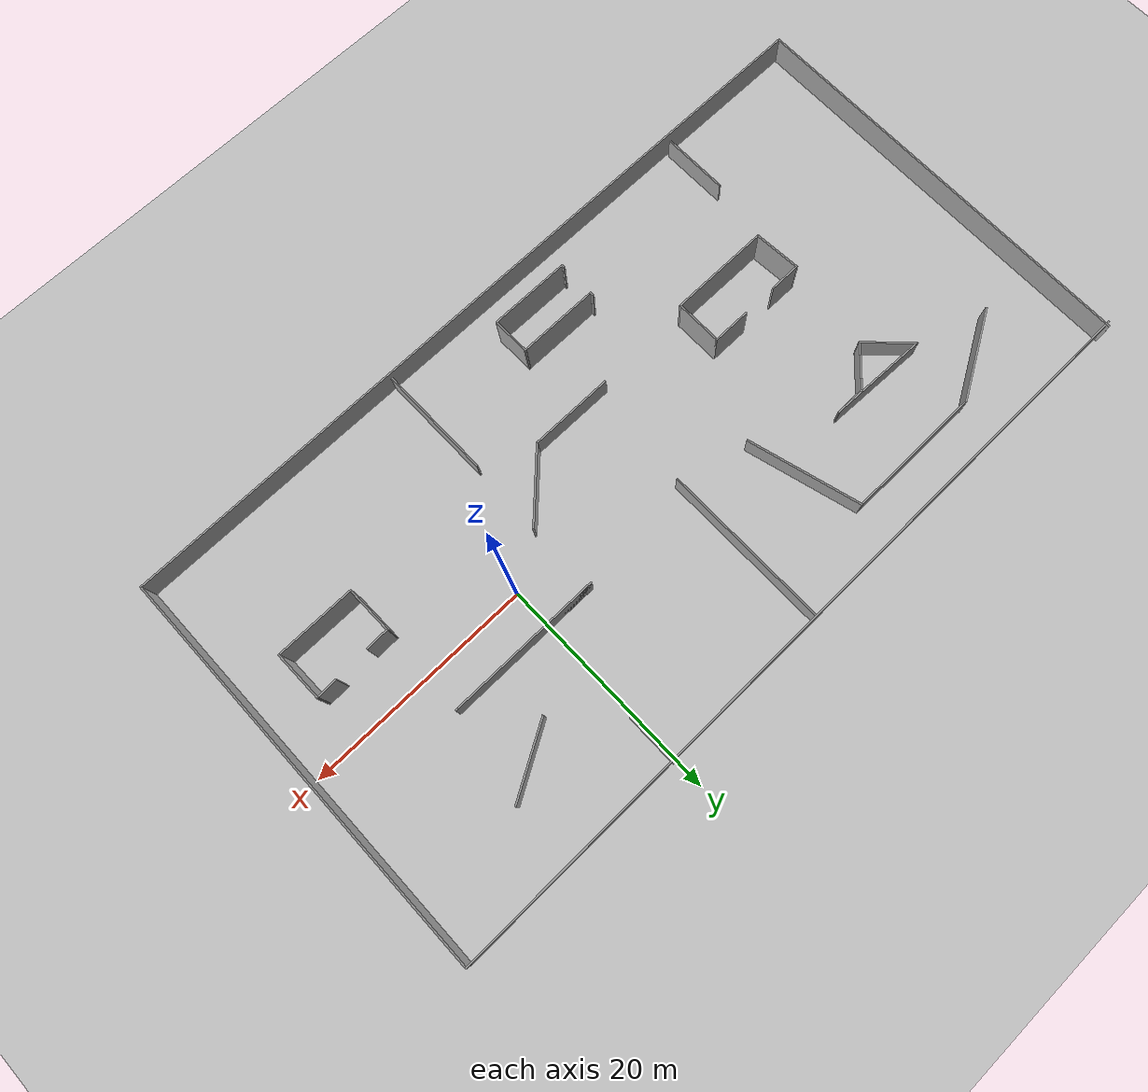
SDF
<sdf version="1.7">
 <world name="default">
  <light name="sun" type="directional">
   <pose>0 0 10 0 -0 0</pose>
   <diffuse>0.8 0.8 0.8 1</diffuse>
   <specular>0.2 0.2 0.2 1</specular>
   <attenuation>
    <range>1000</range>
    <constant>0.9</constant>
    <linear>0.01</linear>
    <quadratic>0.001</quadratic>
   </attenuation>
   <direction>-0.5 0.1 -0.9</direction>
   <spot><inner_angle>0</inner_angle><outer_angle>0</outer_angle><falloff>0</falloff></spot>
  </light>
  <model name="ground_plane">
   <static>1</static>
   <link name="link">
    <collision name="collision">
     <geometry><plane><normal>0 0 1</normal><size>100 100</size></plane></geometry>
     <surface>
      <contact><collide_bitmask>65535</collide_bitmask></contact>
      <friction><ode><mu>100</mu><mu2>50</mu2></ode></friction>
     </surface>
    </collision>
    <visual name="visual">
     <cast_shadows>0</cast_shadows>
     <geometry><plane><normal>0 0 1</normal><size>100 100</size></plane></geometry>
     <material>
      <script><uri>file://media/materials/scripts/gazebo.material</uri><name>Gazebo/Grey</name></script>
     </material>
    </visual>
   </link>
  </model>
  <gravity>0 0 -9.8</gravity>
  <magnetic_field>6e-06 2.3e-05 -4.2e-05</magnetic_field>
  <atmosphere type="adiabatic"/>
  <physics type="ode">
   <max_step_size>0.001</max_step_size>
   <real_time_factor>1</real_time_factor>
   <real_time_update_rate>1000</real_time_update_rate>
  </physics>
  <scene><ambient>0.4 0.4 0.4 1</ambient><background>0.7 0.7 0.7 1</background><shadows>1</shadows></scene>
  <spherical_coordinates>
   <surface_model>EARTH_WGS84</surface_model>
   <latitude_deg>0</latitude_deg>
   <longitude_deg>0</longitude_deg>
   <elevation>0</elevation>
   <heading_deg>0</heading_deg>
  </spherical_coordinates>
  <model name="forkwork.world">
   <pose>-14.2792 -0.985001 0 0 -0 0</pose>
   <link name="Wall_0">
    <collision name="Wall_0_Collision">
     <geometry><box><size>37.2514 0.15 3</size></box></geometry>
     <pose>0 0 1.5 0 -0 0</pose>
    </collision>
    <visual name="Wall_0_Visual">
     <pose>0 0 1.5 0 -0 0</pose>
     <geometry><box><size>37.2514 0.15 3</size></box></geometry>
     <material>
      <script><uri>file://media/materials/scripts/gazebo.material</uri><name>Gazebo/Grey</name></script>
      <ambient>1 1 1 1</ambient>
     </material>
     <meta><layer>0</layer></meta>
    </visual>
    <pose>-34.4248 1e-06 0 0 -0 -1.57947</pose>
   </link>
   <link name="Wall_1">
    <collision name="Wall_1_Collision">
     <geometry><box><size>69.1611 0.15 3</size></box></geometry>
     <pose>0 0 1.5 0 -0 0</pose>
    </collision>
    <visual name="Wall_1_Visual">
     <pose>0 0 1.5 0 -0 0</pose>
     <geometry><box><size>69.1611 0.15 3</size></box></geometry>
     <material>
      <script><uri>file://media/materials/scripts/gazebo.material</uri><name>Gazebo/Grey</name></script>
      <ambient>1 1 1 1</ambient>
     </material>
     <meta><layer>0</layer></meta>
    </visual>
    <pose>-0.080338 -18.55 0 0 -0 0</pose>
   </link>
   <link name="Wall_10">
    <collision name="Wall_10_Collision">
     <geometry><box><size>6 0.15 2.5</size></box></geometry>
     <pose>0 0 1.25 0 -0 0</pose>
    </collision>
    <visual name="Wall_10_Visual">
     <pose>0 0 1.25 0 -0 0</pose>
     <geometry><box><size>6 0.15 2.5</size></box></geometry>
     <material>
      <script><uri>file://media/materials/scripts/gazebo.material</uri><name>Gazebo/Grey</name></script>
      <ambient>1 1 1 1</ambient>
     </material>
     <meta><layer>0</layer></meta>
    </visual>
    <pose>-21.0697 -15.2699 0 0 -0 -1.5708</pose>
   </link>
   <link name="Wall_12">
    <collision name="Wall_12_Collision">
     <geometry><box><size>10.25 0.15 2.5</size></box></geometry>
     <pose>0 0 1.25 0 -0 0</pose>
    </collision>
    <visual name="Wall_12_Visual">
     <pose>0 0 1.25 0 -0 0</pose>
     <geometry><box><size>10.25 0.15 2.5</size></box></geometry>
     <material>
      <script><uri>file://media/materials/scripts/gazebo.material</uri><name>Gazebo/Grey</name></script>
      <ambient>1 1 1 1</ambient>
     </material>
     <meta><layer>0</layer></meta>
    </visual>
    <pose>9.87941 -13.292 0 0 -0 -1.5708</pose>
   </link>
   <link name="Wall_14">
    <collision name="Wall_14_Collision">
     <geometry><box><size>13.5 0.15 2.5</size></box></geometry>
     <pose>0 0 1.25 0 -0 0</pose>
    </collision>
    <visual name="Wall_14_Visual">
     <pose>0 0 1.25 0 -0 0</pose>
     <geometry><box><size>13.5 0.15 2.5</size></box></geometry>
     <material>
      <script><uri>file://media/materials/scripts/gazebo.material</uri><name>Gazebo/Grey</name></script>
      <ambient>1 1 1 1</ambient>
     </material>
     <meta><layer>0</layer></meta>
    </visual>
    <pose>16.5544 4.66556 0 0 -0 0</pose>
   </link>
   <link name="Wall_16">
    <collision name="Wall_16_Collision">
     <geometry><box><size>15 0.15 2.5</size></box></geometry>
     <pose>0 0 1.25 0 -0 0</pose>
    </collision>
    <visual name="Wall_16_Visual">
     <pose>0 0 1.25 0 -0 0</pose>
     <geometry><box><size>15 0.15 2.5</size></box></geometry>
     <material>
      <script><uri>file://media/materials/scripts/gazebo.material</uri><name>Gazebo/Grey</name></script>
      <ambient>1 1 1 1</ambient>
     </material>
     <meta><layer>0</layer></meta>
    </visual>
    <pose>-0.544267 10.8715 0 0 -0 -1.5708</pose>
   </link>
   <link name="Wall_18">
    <collision name="Wall_18_Collision">
     <geometry><box><size>4.75 0.15 2.5</size></box></geometry>
     <pose>0 0 1.25 0 -0 0</pose>
    </collision>
    <visual name="Wall_18_Visual">
     <pose>0 0 1.25 0 -0 0</pose>
     <geometry><box><size>4.75 0.15 2.5</size></box></geometry>
     <material>
      <script><uri>file://media/materials/scripts/gazebo.material</uri><name>Gazebo/Grey</name></script>
      <ambient>1 1 1 1</ambient>
     </material>
     <meta><layer>0</layer></meta>
    </visual>
    <pose>14.5671 16.1364 0 0 -0 -1.5708</pose>
   </link>
   <link name="Wall_2">
    <collision name="Wall_2_Collision">
     <geometry><box><size>37.0004 0.15 3</size></box></geometry>
     <pose>0 0 1.5 0 -0 0</pose>
    </collision>
    <visual name="Wall_2_Visual">
     <pose>0 0 1.5 0 -0 0</pose>
     <geometry><box><size>37.0004 0.15 3</size></box></geometry>
     <material>
      <script><uri>file://media/materials/scripts/gazebo.material</uri><name>Gazebo/Grey</name></script>
      <ambient>1 1 1 1</ambient>
     </material>
     <meta><layer>0</layer></meta>
    </visual>
    <pose>34.5057 -0.124999 0 0 -0 1.56643</pose>
   </link>
   <link name="Wall_20">
    <collision name="Wall_20_Collision">
     <geometry><box><size>13.75 0.15 2.5</size></box></geometry>
     <pose>0 0 1.25 0 -0 0</pose>
    </collision>
    <visual name="Wall_20_Visual">
     <pose>0 0 1.25 0 -0 0</pose>
     <geometry><box><size>13.75 0.15 2.5</size></box></geometry>
     <material>
      <script><uri>file://media/materials/scripts/gazebo.material</uri><name>Gazebo/Grey</name></script>
      <ambient>1 1 1 1</ambient>
     </material>
     <meta><layer>0</layer></meta>
    </visual>
    <pose>16.6794 4.66556 0 0 -0 0</pose>
   </link>
   <link name="Wall_27">
    <pose>-6.14084 -13.726 0 0 -0 -1.5708</pose>
    <visual name="Wall_27_Visual_0">
     <pose>-1.67802 0 2 0 -0 0</pose>
     <geometry><box><size>0.393966 0.15 4</size></box></geometry>
     <material>
      <script><uri>file://media/materials/scripts/gazebo.material</uri><name>Gazebo/Grey</name></script>
      <ambient>1 1 1 1</ambient>
     </material>
     <meta><layer>0</layer></meta>
    </visual>
    <collision name="Wall_27_Collision_0">
     <geometry><box><size>0.393966 0.15 4</size></box></geometry>
     <pose>-1.67802 0 2 0 -0 0</pose>
    </collision>
    <visual name="Wall_27_Visual_1">
     <pose>1.69698 0 2 0 -0 0</pose>
     <geometry><box><size>0.356034 0.15 4</size></box></geometry>
     <material>
      <script><uri>file://media/materials/scripts/gazebo.material</uri><name>Gazebo/Grey</name></script>
      <ambient>1 1 1 1</ambient>
     </material>
     <meta><layer>0</layer></meta>
    </visual>
    <collision name="Wall_27_Collision_1">
     <geometry><box><size>0.356034 0.15 4</size></box></geometry>
     <pose>1.69698 0 2 0 -0 0</pose>
    </collision>
   </link>
   <link name="Wall_28">
    <collision name="Wall_28_Collision">
     <geometry><box><size>7.25 0.15 4</size></box></geometry>
     <pose>0 0 2 0 -0 0</pose>
    </collision>
    <visual name="Wall_28_Visual">
     <pose>0 0 2 0 -0 0</pose>
     <geometry><box><size>7.25 0.15 4</size></box></geometry>
     <material>
      <script><uri>file://media/materials/scripts/gazebo.material</uri><name>Gazebo/Grey</name></script>
      <ambient>1 1 1 1</ambient>
     </material>
     <meta><layer>0</layer></meta>
    </visual>
    <pose>-2.59084 -15.526 0 0 -0 0</pose>
   </link>
   <link name="Wall_29">
    <collision name="Wall_29_Collision">
     <geometry><box><size>3.5 0.15 4</size></box></geometry>
     <pose>0 0 2 0 -0 0</pose>
    </collision>
    <visual name="Wall_29_Visual">
     <pose>0 0 2 0 -0 0</pose>
     <geometry><box><size>3.5 0.15 4</size></box></geometry>
     <material>
      <script><uri>file://media/materials/scripts/gazebo.material</uri><name>Gazebo/Grey</name></script>
      <ambient>1 1 1 1</ambient>
     </material>
     <meta><layer>0</layer></meta>
    </visual>
    <pose>0.959162 -13.851 0 0 -0 1.5708</pose>
   </link>
   <link name="Wall_3">
    <collision name="Wall_3_Collision">
     <geometry><box><size>69.25 0.15 3</size></box></geometry>
     <pose>0 0 1.5 0 -0 0</pose>
    </collision>
    <visual name="Wall_3_Visual">
     <pose>0 0 1.5 0 -0 0</pose>
     <geometry><box><size>69.25 0.15 3</size></box></geometry>
     <material>
      <script><uri>file://media/materials/scripts/gazebo.material</uri><name>Gazebo/Grey</name></script>
      <ambient>1 1 1 1</ambient>
     </material>
     <meta><layer>0</layer></meta>
    </visual>
    <pose>0.036161 18.3 0 0 -0 3.14159</pose>
   </link>
   <link name="Wall_30">
    <collision name="Wall_30_Collision">
     <geometry><box><size>7.25 0.15 4</size></box></geometry>
     <pose>0 0 2 0 -0 0</pose>
    </collision>
    <visual name="Wall_30_Visual">
     <pose>0 0 2 0 -0 0</pose>
     <geometry><box><size>7.25 0.15 4</size></box></geometry>
     <material>
      <script><uri>file://media/materials/scripts/gazebo.material</uri><name>Gazebo/Grey</name></script>
      <ambient>1 1 1 1</ambient>
     </material>
     <meta><layer>0</layer></meta>
    </visual>
    <pose>-2.59084 -12.176 0 0 -0 3.14159</pose>
   </link>
   <link name="Wall_32">
    <collision name="Wall_32_Collision">
     <geometry><box><size>4.25 0.15 4</size></box></geometry>
     <pose>0 0 2 0 -0 0</pose>
    </collision>
    <visual name="Wall_32_Visual">
     <pose>0 0 2 0 -0 0</pose>
     <geometry><box><size>4.25 0.15 4</size></box></geometry>
     <material>
      <script><uri>file://media/materials/scripts/gazebo.material</uri><name>Gazebo/Grey</name></script>
      <ambient>1 1 1 1</ambient>
     </material>
     <meta><layer>0</layer></meta>
    </visual>
    <pose>23.2197 -5.021 0 0 -0 -1.55982</pose>
   </link>
   <link name="Wall_33">
    <collision name="Wall_33_Collision">
     <geometry><box><size>7 0.15 4</size></box></geometry>
     <pose>0 0 2 0 -0 0</pose>
    </collision>
    <visual name="Wall_33_Visual">
     <pose>0 0 2 0 -0 0</pose>
     <geometry><box><size>7 0.15 4</size></box></geometry>
     <material>
      <script><uri>file://media/materials/scripts/gazebo.material</uri><name>Gazebo/Grey</name></script>
      <ambient>1 1 1 1</ambient>
     </material>
     <meta><layer>0</layer></meta>
    </visual>
    <pose>26.6672 -7.071 0 0 -0 0</pose>
   </link>
   <link name="Wall_34">
    <collision name="Wall_34_Collision">
     <geometry><box><size>4.5 0.15 4</size></box></geometry>
     <pose>0 0 2 0 -0 0</pose>
    </collision>
    <visual name="Wall_34_Visual">
     <pose>0 0 2 0 -0 0</pose>
     <geometry><box><size>4.5 0.15 4</size></box></geometry>
     <material>
      <script><uri>file://media/materials/scripts/gazebo.material</uri><name>Gazebo/Grey</name></script>
      <ambient>1 1 1 1</ambient>
     </material>
     <meta><layer>0</layer></meta>
    </visual>
    <pose>30.0697 -4.896 0 0 -0 1.58114</pose>
   </link>
   <link name="Wall_35">
    <pose>26.6222 -2.846 0 0 -0 -3.10511</pose>
    <visual name="Wall_35_Visual_0">
     <pose>-2.54266 0 2 0 -0 0</pose>
     <geometry><box><size>1.91925 0.15 4</size></box></geometry>
     <material>
      <script><uri>file://media/materials/scripts/gazebo.material</uri><name>Gazebo/Grey</name></script>
      <ambient>1 1 1 1</ambient>
     </material>
     <meta><layer>0</layer></meta>
    </visual>
    <collision name="Wall_35_Collision_0">
     <geometry><box><size>1.91925 0.15 4</size></box></geometry>
     <pose>-2.54266 0 2 0 -0 0</pose>
    </collision>
    <visual name="Wall_35_Visual_1">
     <pose>2.45962 0 2 0 -0 0</pose>
     <geometry><box><size>2.08531 0.15 4</size></box></geometry>
     <material>
      <script><uri>file://media/materials/scripts/gazebo.material</uri><name>Gazebo/Grey</name></script>
      <ambient>1 1 1 1</ambient>
     </material>
     <meta><layer>0</layer></meta>
    </visual>
    <collision name="Wall_35_Collision_1">
     <geometry><box><size>2.08531 0.15 4</size></box></geometry>
     <pose>2.45962 0 2 0 -0 0</pose>
    </collision>
   </link>
   <link name="Wall_37">
    <collision name="Wall_37_Collision">
     <geometry><box><size>8.5 0.15 2.5</size></box></geometry>
     <pose>0 0 1.25 0 -0 0</pose>
    </collision>
    <visual name="Wall_37_Visual">
     <pose>0 0 1.25 0 -0 0</pose>
     <geometry><box><size>8.5 0.15 2.5</size></box></geometry>
     <material>
      <script><uri>file://media/materials/scripts/gazebo.material</uri><name>Gazebo/Grey</name></script>
      <ambient>1 1 1 1</ambient>
     </material>
     <meta><layer>0</layer></meta>
    </visual>
    <pose>-25.0526 12.6884 0 0 -0 0.523599</pose>
   </link>
   <link name="Wall_38">
    <collision name="Wall_38_Collision">
     <geometry><box><size>12.25 0.15 2.5</size></box></geometry>
     <pose>0 0 1.25 0 -0 0</pose>
    </collision>
    <visual name="Wall_38_Visual">
     <pose>0 0 1.25 0 -0 0</pose>
     <geometry><box><size>12.25 0.15 2.5</size></box></geometry>
     <material>
      <script><uri>file://media/materials/scripts/gazebo.material</uri><name>Gazebo/Grey</name></script>
      <ambient>1 1 1 1</ambient>
     </material>
     <meta><layer>0</layer></meta>
    </visual>
    <pose>-15.387 14.7759 0 0 -0 0</pose>
   </link>
   <link name="Wall_39">
    <collision name="Wall_39_Collision">
     <geometry><box><size>10.25 0.15 2.5</size></box></geometry>
     <pose>0 0 1.25 0 -0 0</pose>
    </collision>
    <visual name="Wall_39_Visual">
     <pose>0 0 1.25 0 -0 0</pose>
     <geometry><box><size>10.25 0.15 2.5</size></box></geometry>
     <material>
      <script><uri>file://media/materials/scripts/gazebo.material</uri><name>Gazebo/Grey</name></script>
      <ambient>1 1 1 1</ambient>
     </material>
     <meta><layer>0</layer></meta>
    </visual>
    <pose>-8.02994 9.89796 0 0 -0 -1.309</pose>
   </link>
   <link name="Wall_41">
    <collision name="Wall_41_Collision">
     <geometry><box><size>7.5 0.15 2.5</size></box></geometry>
     <pose>0 0 1.25 0 -0 0</pose>
    </collision>
    <visual name="Wall_41_Visual">
     <pose>0 0 1.25 0 -0 0</pose>
     <geometry><box><size>7.5 0.15 2.5</size></box></geometry>
     <material>
      <script><uri>file://media/materials/scripts/gazebo.material</uri><name>Gazebo/Grey</name></script>
      <ambient>1 1 1 1</ambient>
     </material>
     <meta><layer>0</layer></meta>
    </visual>
    <pose>1.59161 -6.32949 0 0 -0 0</pose>
   </link>
   <link name="Wall_42">
    <collision name="Wall_42_Collision">
     <geometry><box><size>7 0.15 2.5</size></box></geometry>
     <pose>0 0 1.25 0 -0 0</pose>
    </collision>
    <visual name="Wall_42_Visual">
     <pose>0 0 1.25 0 -0 0</pose>
     <geometry><box><size>7 0.15 2.5</size></box></geometry>
     <material>
      <script><uri>file://media/materials/scripts/gazebo.material</uri><name>Gazebo/Grey</name></script>
      <ambient>1 1 1 1</ambient>
     </material>
     <meta><layer>0</layer></meta>
    </visual>
    <pose>7.68845 -3.90765 0 0 -0 0.785398</pose>
   </link>
   <link name="Wall_44">
    <collision name="Wall_44_Collision">
     <geometry><box><size>6.75 0.15 2.5</size></box></geometry>
     <pose>0 0 1.25 0 -0 0</pose>
    </collision>
    <visual name="Wall_44_Visual">
     <pose>0 0 1.25 0 -0 0</pose>
     <geometry><box><size>6.75 0.15 2.5</size></box></geometry>
     <material>
      <script><uri>file://media/materials/scripts/gazebo.material</uri><name>Gazebo/Grey</name></script>
      <ambient>1 1 1 1</ambient>
     </material>
     <meta><layer>0</layer></meta>
    </visual>
    <pose>22.0634 11.0497 0 0 -0 -2.61799</pose>
   </link>
   <link name="Wall_46">
    <pose>-15.0788 -2.284 0 0 -0 0</pose>
    <visual name="Wall_46_Visual_0">
     <pose>-3.20513 0 2 0 -0 0</pose>
     <geometry><box><size>2.83973 0.15 4</size></box></geometry>
     <material>
      <script><uri>file://media/materials/scripts/gazebo.material</uri><name>Gazebo/Grey</name></script>
      <ambient>1 1 1 1</ambient>
     </material>
     <meta><layer>0</layer></meta>
    </visual>
    <collision name="Wall_46_Collision_0">
     <geometry><box><size>2.83973 0.15 4</size></box></geometry>
     <pose>-3.20513 0 2 0 -0 0</pose>
    </collision>
    <visual name="Wall_46_Visual_1">
     <pose>2.91987 0 2 0 -0 0</pose>
     <geometry><box><size>3.41027 0.15 4</size></box></geometry>
     <material>
      <script><uri>file://media/materials/scripts/gazebo.material</uri><name>Gazebo/Grey</name></script>
      <ambient>1 1 1 1</ambient>
     </material>
     <meta><layer>0</layer></meta>
    </visual>
    <collision name="Wall_46_Collision_1">
     <geometry><box><size>3.41027 0.15 4</size></box></geometry>
     <pose>2.91987 0 2 0 -0 0</pose>
    </collision>
   </link>
   <link name="Wall_47">
    <collision name="Wall_47_Collision">
     <geometry><box><size>4.25 0.15 4</size></box></geometry>
     <pose>0 0 2 0 -0 0</pose>
    </collision>
    <visual name="Wall_47_Visual">
     <pose>0 0 2 0 -0 0</pose>
     <geometry><box><size>4.25 0.15 4</size></box></geometry>
     <material>
      <script><uri>file://media/materials/scripts/gazebo.material</uri><name>Gazebo/Grey</name></script>
      <ambient>1 1 1 1</ambient>
     </material>
     <meta><layer>0</layer></meta>
    </visual>
    <pose>-10.5288 -4.334 0 0 -0 -1.5708</pose>
   </link>
   <link name="Wall_48">
    <collision name="Wall_48_Collision">
     <geometry><box><size>9 0.15 4</size></box></geometry>
     <pose>0 0 2 0 -0 0</pose>
    </collision>
    <visual name="Wall_48_Visual">
     <pose>0 0 2 0 -0 0</pose>
     <geometry><box><size>9 0.15 4</size></box></geometry>
     <material>
      <script><uri>file://media/materials/scripts/gazebo.material</uri><name>Gazebo/Grey</name></script>
      <ambient>1 1 1 1</ambient>
     </material>
     <meta><layer>0</layer></meta>
    </visual>
    <pose>-14.9538 -6.384 0 0 -0 3.14159</pose>
   </link>
   <link name="Wall_49">
    <collision name="Wall_49_Collision">
     <geometry><box><size>4.25762 0.15 4</size></box></geometry>
     <pose>0 0 2 0 -0 0</pose>
    </collision>
    <visual name="Wall_49_Visual">
     <pose>0 0 2 0 -0 0</pose>
     <geometry><box><size>4.25762 0.15 4</size></box></geometry>
     <material>
      <script><uri>file://media/materials/scripts/gazebo.material</uri><name>Gazebo/Grey</name></script>
      <ambient>1 1 1 1</ambient>
     </material>
     <meta><layer>0</layer></meta>
    </visual>
    <pose>-19.5038 -4.334 0 0 -0 1.6317</pose>
   </link>
   <link name="Wall_5">
    <collision name="Wall_5_Collision">
     <geometry><box><size>4.75 0.15 2.5</size></box></geometry>
     <pose>0 0 1.25 0 -0 0</pose>
    </collision>
    <visual name="Wall_5_Visual">
     <pose>0 0 1.25 0 -0 0</pose>
     <geometry><box><size>4.75 0.15 2.5</size></box></geometry>
     <material>
      <script><uri>file://media/materials/scripts/gazebo.material</uri><name>Gazebo/Grey</name></script>
      <ambient>1 1 1 1</ambient>
     </material>
     <meta><layer>0</layer></meta>
    </visual>
    <pose>-20.7306 7.10775 0 0 -0 -0.785398</pose>
   </link>
   <link name="Wall_6">
    <collision name="Wall_6_Collision">
     <geometry><box><size>4.25 0.15 2.5</size></box></geometry>
     <pose>0 0 1.25 0 -0 0</pose>
    </collision>
    <visual name="Wall_6_Visual">
     <pose>0 0 1.25 0 -0 0</pose>
     <geometry><box><size>4.25 0.15 2.5</size></box></geometry>
     <material>
      <script><uri>file://media/materials/scripts/gazebo.material</uri><name>Gazebo/Grey</name></script>
      <ambient>1 1 1 1</ambient>
     </material>
     <meta><layer>0</layer></meta>
    </visual>
    <pose>-17.6547 6.93097 0 0 -0 0.785398</pose>
   </link>
   <link name="Wall_7">
    <collision name="Wall_7_Collision">
     <geometry><box><size>2.75 0.15 2.5</size></box></geometry>
     <pose>0 0 1.25 0 -0 0</pose>
    </collision>
    <visual name="Wall_7_Visual">
     <pose>0 0 1.25 0 -0 0</pose>
     <geometry><box><size>2.75 0.15 2.5</size></box></geometry>
     <material>
      <script><uri>file://media/materials/scripts/gazebo.material</uri><name>Gazebo/Grey</name></script>
      <ambient>1 1 1 1</ambient>
     </material>
     <meta><layer>0</layer></meta>
    </visual>
    <pose>-14.9051 8.38054 0 0 -0 0</pose>
   </link>
   <link name="Wall_8">
    <collision name="Wall_8_Collision">
     <geometry><box><size>8.90897 0.15 2.5</size></box></geometry>
     <pose>0 0 1.25 0 -0 0</pose>
    </collision>
    <visual name="Wall_8_Visual">
     <pose>0 0 1.25 0 -0 0</pose>
     <geometry><box><size>8.90897 0.15 2.5</size></box></geometry>
     <material>
      <script><uri>file://media/materials/scripts/gazebo.material</uri><name>Gazebo/Grey</name></script>
      <ambient>1 1 1 1</ambient>
     </material>
     <meta><layer>0</layer></meta>
    </visual>
    <pose>-17.981 8.55732 0 0 -0 3.10122</pose>
   </link>
   <static>1</static>
  </model>
  <model name="aruco_3">
   <link name="link">
    <pose>0 0 0.115 0 1.57 0</pose>
    <inertial>
     <mass>0.39</mass>
     <inertia><ixx>0.00058</ixx><ixy>0</ixy><ixz>0</ixz><iyy>0.00058</iyy><iyz>0</iyz><izz>0.00019</izz></inertia>
    </inertial>
    <collision name="collision"><geometry><box><size>0.496 0.496 0.01</size></box></geometry></collision>
    <visual name="visual">
     <geometry><box><size>0.496 0.496 0.01</size></box></geometry>
     <material>
      <script>
       <uri>model://apriltag/materials/scripts</uri>
       <uri>model://apriltag/materials/textures</uri>
       <name>startflag/Diffuse1</name>
      </script>
     </material>
    </visual>
   </link>
   <pose>-2.55308 3.59164 0.132995 1.8e-05 0.000939 -1.57135</pose>
  </model>
  <model name="aruco_3_clone">
   <link name="link">
    <pose>0 0 0.115 0 1.57 0</pose>
    <inertial>
     <mass>0.39</mass>
     <inertia><ixx>0.00058</ixx><ixy>0</ixy><ixz>0</ixz><iyy>0.00058</iyy><iyz>0</iyz><izz>0.00019</izz></inertia>
    </inertial>
    <collision name="collision"><geometry><box><size>0.496 0.496 0.01</size></box></geometry></collision>
    <visual name="visual">
     <geometry><box><size>0.496 0.496 0.01</size></box></geometry>
     <material>
      <script>
       <uri>model://apriltag/materials/scripts</uri>
       <uri>model://apriltag/materials/textures</uri>
       <name>startflag/Diffuse1</name>
      </script>
     </material>
    </visual>
   </link>
   <pose>-1.574 3.58319 0.132995 -1.8e-05 0.000883 -1.57132</pose>
  </model>
  <model name="aruco_3_clone_clone">
   <link name="link">
    <pose>0 0 0.115 0 1.57 0</pose>
    <inertial>
     <mass>0.39</mass>
     <inertia><ixx>0.00058</ixx><ixy>0</ixy><ixz>0</ixz><iyy>0.00058</iyy><iyz>0</iyz><izz>0.00019</izz></inertia>
    </inertial>
    <collision name="collision"><geometry><box><size>0.496 0.496 0.01</size></box></geometry></collision>
    <visual name="visual">
     <geometry><box><size>0.496 0.496 0.01</size></box></geometry>
     <material>
      <script>
       <uri>model://apriltag/materials/scripts</uri>
       <uri>model://apriltag/materials/textures</uri>
       <name>startflag/Diffuse1</name>
      </script>
     </material>
    </visual>
   </link>
   <pose>1.41249 3.59361 0.132995 -1.8e-05 0.000916 -1.57132</pose>
  </model>
 </world>
</sdf>
